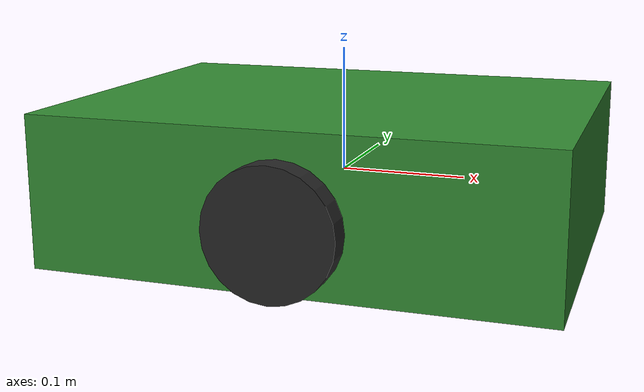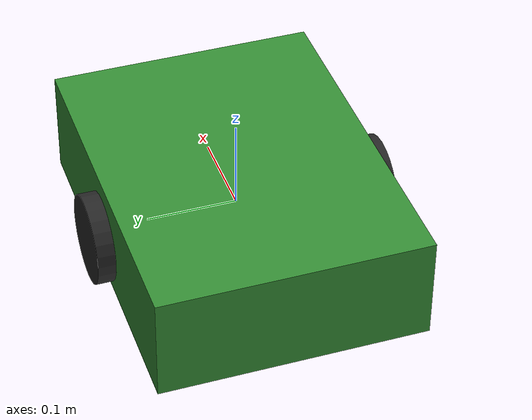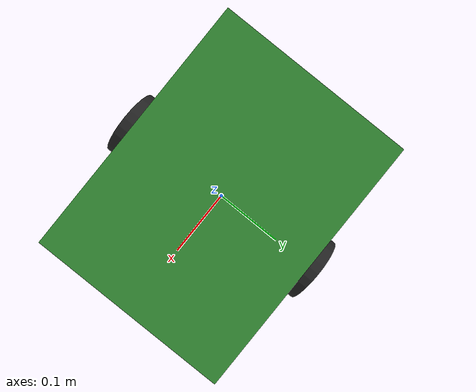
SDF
<?xml version="1.0" ?>
<sdf version="1.9">
  <model name="diffbot">

    <!-- ============ chassis ============ -->
    <link name="base_link">
      <pose>0 0 0 0 0 0</pose>
      <inertial>
        <mass>4.0</mass>
        <inertia>
          <ixx>0.0433</ixx><ixy>0</ixy><ixz>0</ixz>
          <iyy>0.0733</iyy><iyz>0</iyz>
          <izz>0.1033</izz>
        </inertia>
      </inertial>
      <collision name="collision">
        <geometry><box><size>0.40 0.30 0.12</size></box></geometry>
      </collision>
      <visual name="visual">
        <geometry><box><size>0.40 0.30 0.12</size></box></geometry>
        <material>
          <ambient>0.15 0.35 0.15 1</ambient>
          <diffuse>0.2 0.55 0.2 1</diffuse>
        </material>
      </visual>

      <!-- ============ LiDAR ============ -->
      <sensor name="lidar" type="gpu_lidar">
        <!-- 0.15 m up: above the chassis, below the 0.6 m obstacle tops. -->
        <pose>0.15 0 0.15 0 0 0</pose>
        <topic>scan</topic>
        <update_rate>20</update_rate>
        <always_on>true</always_on>
        <visualize>false</visualize>
        <gz_frame_id>diffbot/lidar_link</gz_frame_id>
        <lidar>
          <scan>
            <horizontal>
              <samples>360</samples>
              <resolution>1</resolution>
              <!-- 360 beams at exactly 1 degree. max_angle is pi - 1 degree so
                   the last beam does not duplicate the first; even 18-beam
                   blocks for min-pooling depend on this. -->
              <min_angle>-3.141593</min_angle>
              <max_angle>3.124139</max_angle>
            </horizontal>
            <vertical>
              <samples>1</samples>
              <resolution>1</resolution>
              <min_angle>0</min_angle>
              <max_angle>0</max_angle>
            </vertical>
          </scan>
          <range>
            <min>0.08</min>
            <max>10.0</max>
            <resolution>0.01</resolution>
          </range>
          <noise>
            <type>gaussian</type>
            <mean>0.0</mean>
            <stddev>0.0</stddev>
          </noise>
        </lidar>
      </sensor>
    </link>

    <!-- ============ drive wheels ============ -->
    <link name="left_wheel">
      <pose>0 0.15 -0.01 -1.5707 0 0</pose>
      <inertial>
        <mass>0.3</mass>
        <inertia>
          <ixx>0.000244</ixx><ixy>0</ixy><ixz>0</ixz>
          <iyy>0.000244</iyy><iyz>0</iyz>
          <izz>0.000375</izz>
        </inertia>
      </inertial>
      <collision name="collision">
        <geometry><cylinder><radius>0.05</radius><length>0.04</length></cylinder></geometry>
        <surface>
          <friction><ode><mu>1.2</mu><mu2>1.2</mu2></ode></friction>
        </surface>
      </collision>
      <visual name="visual">
        <geometry><cylinder><radius>0.05</radius><length>0.04</length></cylinder></geometry>
        <material><ambient>0.1 0.1 0.1 1</ambient><diffuse>0.15 0.15 0.15 1</diffuse></material>
      </visual>
    </link>

    <link name="right_wheel">
      <pose>0 -0.15 -0.01 -1.5707 0 0</pose>
      <inertial>
        <mass>0.3</mass>
        <inertia>
          <ixx>0.000244</ixx><ixy>0</ixy><ixz>0</ixz>
          <iyy>0.000244</iyy><iyz>0</iyz>
          <izz>0.000375</izz>
        </inertia>
      </inertial>
      <collision name="collision">
        <geometry><cylinder><radius>0.05</radius><length>0.04</length></cylinder></geometry>
        <surface>
          <friction><ode><mu>1.2</mu><mu2>1.2</mu2></ode></friction>
        </surface>
      </collision>
      <visual name="visual">
        <geometry><cylinder><radius>0.05</radius><length>0.04</length></cylinder></geometry>
        <material><ambient>0.1 0.1 0.1 1</ambient><diffuse>0.15 0.15 0.15 1</diffuse></material>
      </visual>
    </link>

    <link name="caster">
      <pose>-0.15 0 -0.04 0 0 0</pose>
      <inertial>
        <mass>0.1</mass>
        <inertia>
          <ixx>0.00001</ixx><ixy>0</ixy><ixz>0</ixz>
          <iyy>0.00001</iyy><iyz>0</iyz>
          <izz>0.00001</izz>
        </inertia>
      </inertial>
      <collision name="collision">
        <geometry><sphere><radius>0.02</radius></sphere></geometry>
        <surface>
          <friction><ode><mu>0.0</mu><mu2>0.0</mu2></ode></friction>
        </surface>
      </collision>
      <visual name="visual">
        <geometry><sphere><radius>0.02</radius></sphere></geometry>
        <material><ambient>0.1 0.1 0.1 1</ambient><diffuse>0.15 0.15 0.15 1</diffuse></material>
      </visual>
    </link>

    <joint name="left_wheel_joint" type="revolute">
      <parent>base_link</parent>
      <child>left_wheel</child>
      <axis>
        <xyz>0 0 1</xyz>
        <limit><lower>-1e16</lower><upper>1e16</upper></limit>
      </axis>
    </joint>

    <joint name="right_wheel_joint" type="revolute">
      <parent>base_link</parent>
      <child>right_wheel</child>
      <axis>
        <xyz>0 0 1</xyz>
        <limit><lower>-1e16</lower><upper>1e16</upper></limit>
      </axis>
    </joint>

    <joint name="caster_joint" type="fixed">
      <parent>base_link</parent>
      <child>caster</child>
    </joint>

    <!-- ============ differential drive ============ -->
    <plugin filename="gz-sim-diff-drive-system"
            name="gz::sim::systems::DiffDrive">
      <left_joint>left_wheel_joint</left_joint>
      <right_joint>right_wheel_joint</right_joint>
      <wheel_separation>0.30</wheel_separation>
      <wheel_radius>0.05</wheel_radius>
      <max_wheel_acceleration>10.0</max_wheel_acceleration>
      <max_velocity>20.0</max_velocity>
      <topic>cmd_vel</topic>
      <odom_topic>odom</odom_topic>
      <tf_topic>tf</tf_topic>
      <frame_id>odom</frame_id>
      <child_frame_id>diffbot/base_link</child_frame_id>
      <!-- Must equal contract.CONTROL_HZ. See the header comment. -->
      <odom_publish_frequency>20</odom_publish_frequency>
    </plugin>

  </model>
</sdf>
